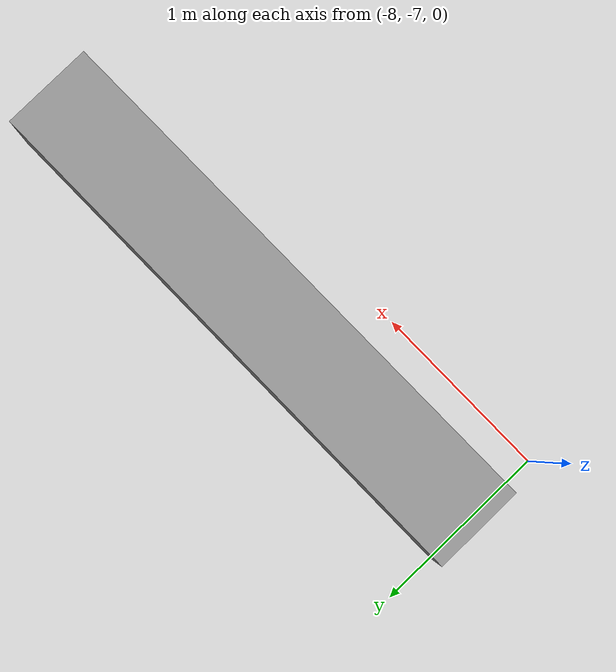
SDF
<?xml version='1.0'?>
<sdf version='1.7'>
  <model name='airport_seat'>
    <pose>-4 -3.394 0 0 -0 0</pose>
    <link name='Wall_15'>
      <collision name='Wall_15_Collision'>
        <geometry>
          <box>
            <size>3 0.5 0.5</size>
          </box>
        </geometry>
        <pose>0 0 0.25 0 -0 0</pose>
      </collision>
      <visual name='Wall_15_Visual'>
        <pose>0 0 0.25 0 -0 0</pose>
        <geometry>
          <box>
            <size>3 0.5 0.5</size>
          </box>
        </geometry>
        <material>
          <script>
            <uri>file://media/materials/scripts/gazebo.material</uri>
            <name>Gazebo/Grey</name>
          </script>
          <ambient>1 1 1 1</ambient>
        </material>
        <meta>
          <layer>0</layer>
        </meta>
      </visual>
      <pose>-2.5 -3.144 0 0 -0 0</pose>
    </link>
    <static>1</static>
  </model>
</sdf>
